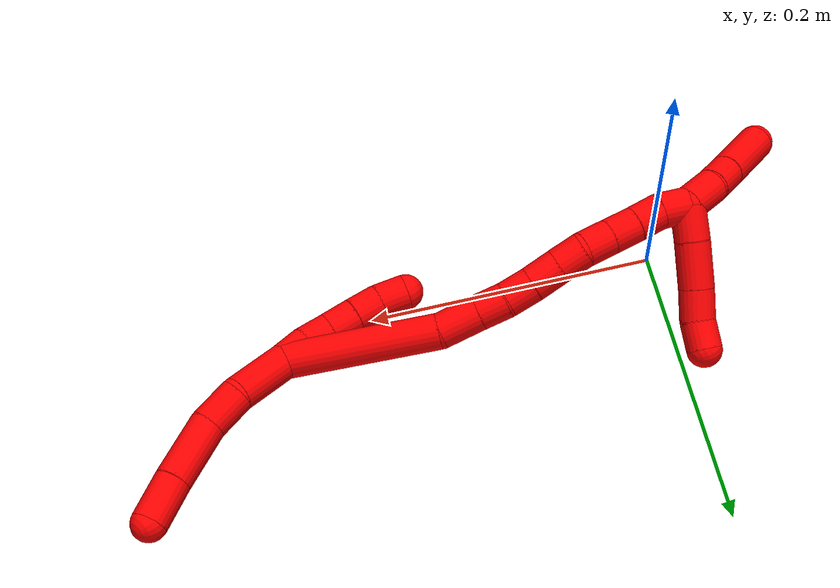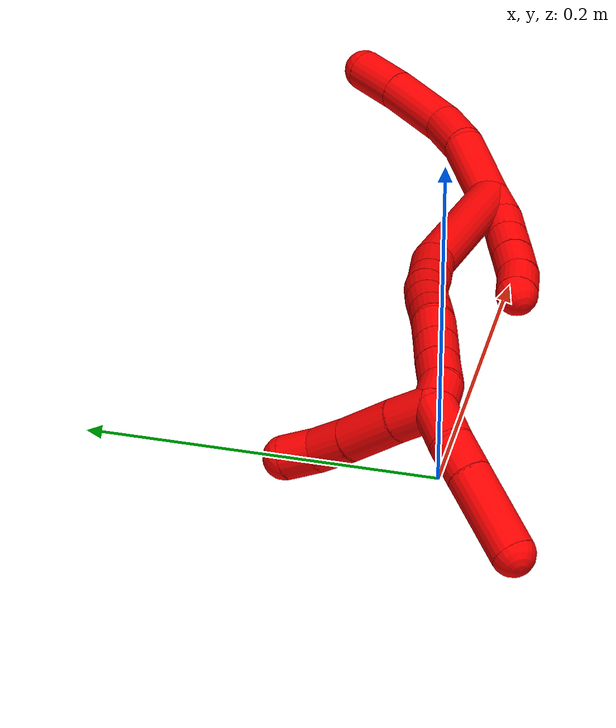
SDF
<sdf version="1.7">
 <world name="default">
  <model name="2">
   <static>0</static>
   <link name="2">
    <collision name="collision-cylinder-e_1_2_8">
     <pose>-0.001228 -0.000747 0.022044 0.03386 -0.055618 -0.000942</pose>
     <geometry><cylinder><radius>0.0125</radius><length>0.044182</length></cylinder></geometry>
     <surface>
      <friction><ode><mu>1.16</mu><mu2>1.16</mu2><slip1>0</slip1><slip2>0</slip2></ode></friction>
      <contact><ode><kp>1e+06</kp><kd>1</kd><max_vel>0</max_vel><min_depth>0.001</min_depth></ode></contact>
     </surface>
    </collision>
    <visual name="visual-cylinder-e_1_2_8">
     <pose>-0.001228 -0.000747 0.022044 0.03386 -0.055618 -0.000942</pose>
     <geometry><cylinder><radius>0.0125</radius><length>0.044182</length></cylinder></geometry>
     <material><ambient>1 0 0 1</ambient></material>
    </visual>
    <collision name="collision-cylinder-e_2_8_9">
     <pose>-0.002068 0.00223 0.057767 -0.265757 0.027395 -0.003662</pose>
     <geometry><cylinder><radius>0.0125</radius><length>0.028363</length></cylinder></geometry>
     <surface>
      <friction><ode><mu>1.16</mu><mu2>1.16</mu2><slip1>0</slip1><slip2>0</slip2></ode></friction>
      <contact><ode><kp>1e+06</kp><kd>1</kd><max_vel>0</max_vel><min_depth>0.001</min_depth></ode></contact>
     </surface>
    </collision>
    <visual name="visual-cylinder-e_2_8_9">
     <pose>-0.002068 0.00223 0.057767 -0.265757 0.027395 -0.003662</pose>
     <geometry><cylinder><radius>0.0125</radius><length>0.028363</length></cylinder></geometry>
     <material><ambient>1 0 0 1</ambient></material>
    </visual>
    <collision name="collision-cylinder-e_3_9_10">
     <pose>-0.006511 0.012728 0.092471 -0.311721 -0.215344 0.033966</pose>
     <geometry><cylinder><radius>0.0125</radius><length>0.045224</length></cylinder></geometry>
     <surface>
      <friction><ode><mu>1.16</mu><mu2>1.16</mu2><slip1>0</slip1><slip2>0</slip2></ode></friction>
      <contact><ode><kp>1e+06</kp><kd>1</kd><max_vel>0</max_vel><min_depth>0.001</min_depth></ode></contact>
     </surface>
    </collision>
    <visual name="visual-cylinder-e_3_9_10">
     <pose>-0.006511 0.012728 0.092471 -0.311721 -0.215344 0.033966</pose>
     <geometry><cylinder><radius>0.0125</radius><length>0.045224</length></cylinder></geometry>
     <material><ambient>1 0 0 1</ambient></material>
    </visual>
    <collision name="collision-cylinder-e_4_10_6">
     <pose>-0.015023 0.025157 0.128132 -0.36866 -0.230409 0.043143</pose>
     <geometry><cylinder><radius>0.0125</radius><length>0.03223</length></cylinder></geometry>
     <surface>
      <friction><ode><mu>1.16</mu><mu2>1.16</mu2><slip1>0</slip1><slip2>0</slip2></ode></friction>
      <contact><ode><kp>1e+06</kp><kd>1</kd><max_vel>0</max_vel><min_depth>0.001</min_depth></ode></contact>
     </surface>
    </collision>
    <visual name="visual-cylinder-e_4_10_6">
     <pose>-0.015023 0.025157 0.128132 -0.36866 -0.230409 0.043143</pose>
     <geometry><cylinder><radius>0.0125</radius><length>0.03223</length></cylinder></geometry>
     <material><ambient>1 0 0 1</ambient></material>
    </visual>
    <collision name="collision-cylinder-e_1_2_11">
     <pose>0.000387 -0.000465 -0.009982 3.09507 0.038681 1.38719</pose>
     <geometry><cylinder><radius>0.0125</radius><length>0.02</length></cylinder></geometry>
     <surface>
      <friction><ode><mu>1.16</mu><mu2>1.16</mu2><slip1>0</slip1><slip2>0</slip2></ode></friction>
      <contact><ode><kp>1e+06</kp><kd>1</kd><max_vel>0</max_vel><min_depth>0.001</min_depth></ode></contact>
     </surface>
    </collision>
    <visual name="visual-cylinder-e_1_2_11">
     <pose>0.000387 -0.000465 -0.009982 3.09507 0.038681 1.38719</pose>
     <geometry><cylinder><radius>0.0125</radius><length>0.02</length></cylinder></geometry>
     <material><ambient>1 0 0 1</ambient></material>
    </visual>
    <collision name="collision-cylinder-e_2_11_12">
     <pose>-0.001868 -0.00189 -0.02956 3.04183 -0.267358 -2.43071</pose>
     <geometry><cylinder><radius>0.0125</radius><length>0.02</length></cylinder></geometry>
     <surface>
      <friction><ode><mu>1.16</mu><mu2>1.16</mu2><slip1>0</slip1><slip2>0</slip2></ode></friction>
      <contact><ode><kp>1e+06</kp><kd>1</kd><max_vel>0</max_vel><min_depth>0.001</min_depth></ode></contact>
     </surface>
    </collision>
    <visual name="visual-cylinder-e_2_11_12">
     <pose>-0.001868 -0.00189 -0.02956 3.04183 -0.267358 -2.43071</pose>
     <geometry><cylinder><radius>0.0125</radius><length>0.02</length></cylinder></geometry>
     <material><ambient>1 0 0 1</ambient></material>
    </visual>
    <collision name="collision-cylinder-e_3_12_13">
     <pose>-0.007214 -0.004077 -0.048706 3.01387 -0.273816 -2.27245</pose>
     <geometry><cylinder><radius>0.0125</radius><length>0.02</length></cylinder></geometry>
     <surface>
      <friction><ode><mu>1.16</mu><mu2>1.16</mu2><slip1>0</slip1><slip2>0</slip2></ode></friction>
      <contact><ode><kp>1e+06</kp><kd>1</kd><max_vel>0</max_vel><min_depth>0.001</min_depth></ode></contact>
     </surface>
    </collision>
    <visual name="visual-cylinder-e_3_12_13">
     <pose>-0.007214 -0.004077 -0.048706 3.01387 -0.273816 -2.27245</pose>
     <geometry><cylinder><radius>0.0125</radius><length>0.02</length></cylinder></geometry>
     <material><ambient>1 0 0 1</ambient></material>
    </visual>
    <collision name="collision-cylinder-e_4_13_14">
     <pose>-0.012473 -0.006152 -0.067886 3.05363 -0.25836 -2.48832</pose>
     <geometry><cylinder><radius>0.0125</radius><length>0.02</length></cylinder></geometry>
     <surface>
      <friction><ode><mu>1.16</mu><mu2>1.16</mu2><slip1>0</slip1><slip2>0</slip2></ode></friction>
      <contact><ode><kp>1e+06</kp><kd>1</kd><max_vel>0</max_vel><min_depth>0.001</min_depth></ode></contact>
     </surface>
    </collision>
    <visual name="visual-cylinder-e_4_13_14">
     <pose>-0.012473 -0.006152 -0.067886 3.05363 -0.25836 -2.48832</pose>
     <geometry><cylinder><radius>0.0125</radius><length>0.02</length></cylinder></geometry>
     <material><ambient>1 0 0 1</ambient></material>
    </visual>
    <collision name="collision-cylinder-e_5_14_5">
     <pose>-0.019488 -0.007348 -0.086461 3.10287 -0.4622 -2.97738</pose>
     <geometry><cylinder><radius>0.0125</radius><length>0.02</length></cylinder></geometry>
     <surface>
      <friction><ode><mu>1.16</mu><mu2>1.16</mu2><slip1>0</slip1><slip2>0</slip2></ode></friction>
      <contact><ode><kp>1e+06</kp><kd>1</kd><max_vel>0</max_vel><min_depth>0.001</min_depth></ode></contact>
     </surface>
    </collision>
    <visual name="visual-cylinder-e_5_14_5">
     <pose>-0.019488 -0.007348 -0.086461 3.10287 -0.4622 -2.97738</pose>
     <geometry><cylinder><radius>0.0125</radius><length>0.02</length></cylinder></geometry>
     <material><ambient>1 0 0 1</ambient></material>
    </visual>
    <collision name="collision-cylinder-e_1_2_15">
     <pose>-0.037716 -0.002029 -0.038834 3.08938 -0.77012 -3.01292</pose>
     <geometry><cylinder><radius>0.0125</radius><length>0.108346</length></cylinder></geometry>
     <surface>
      <friction><ode><mu>1.16</mu><mu2>1.16</mu2><slip1>0</slip1><slip2>0</slip2></ode></friction>
      <contact><ode><kp>1e+06</kp><kd>1</kd><max_vel>0</max_vel><min_depth>0.001</min_depth></ode></contact>
     </surface>
    </collision>
    <visual name="visual-cylinder-e_1_2_15">
     <pose>-0.037716 -0.002029 -0.038834 3.08938 -0.77012 -3.01292</pose>
     <geometry><cylinder><radius>0.0125</radius><length>0.108346</length></cylinder></geometry>
     <material><ambient>1 0 0 1</ambient></material>
    </visual>
    <collision name="collision-cylinder-e_2_15_16">
     <pose>-0.083213 -0.007274 -0.08947 2.8756 -0.566508 -2.27994</pose>
     <geometry><cylinder><radius>0.0125</radius><length>0.028995</length></cylinder></geometry>
     <surface>
      <friction><ode><mu>1.16</mu><mu2>1.16</mu2><slip1>0</slip1><slip2>0</slip2></ode></friction>
      <contact><ode><kp>1e+06</kp><kd>1</kd><max_vel>0</max_vel><min_depth>0.001</min_depth></ode></contact>
     </surface>
    </collision>
    <visual name="visual-cylinder-e_2_15_16">
     <pose>-0.083213 -0.007274 -0.08947 2.8756 -0.566508 -2.27994</pose>
     <geometry><cylinder><radius>0.0125</radius><length>0.028995</length></cylinder></geometry>
     <material><ambient>1 0 0 1</ambient></material>
    </visual>
    <collision name="collision-cylinder-e_3_16_17">
     <pose>-0.096926 -0.012867 -0.109198 2.8502 -0.621967 -2.28504</pose>
     <geometry><cylinder><radius>0.0125</radius><length>0.020362</length></cylinder></geometry>
     <surface>
      <friction><ode><mu>1.16</mu><mu2>1.16</mu2><slip1>0</slip1><slip2>0</slip2></ode></friction>
      <contact><ode><kp>1e+06</kp><kd>1</kd><max_vel>0</max_vel><min_depth>0.001</min_depth></ode></contact>
     </surface>
    </collision>
    <visual name="visual-cylinder-e_3_16_17">
     <pose>-0.096926 -0.012867 -0.109198 2.8502 -0.621967 -2.28504</pose>
     <geometry><cylinder><radius>0.0125</radius><length>0.020362</length></cylinder></geometry>
     <material><ambient>1 0 0 1</ambient></material>
    </visual>
    <collision name="collision-cylinder-e_4_17_18">
     <pose>-0.107488 -0.018059 -0.125535 2.81867 -0.481137 -1.96937</pose>
     <geometry><cylinder><radius>0.0125</radius><length>0.020011</length></cylinder></geometry>
     <surface>
      <friction><ode><mu>1.16</mu><mu2>1.16</mu2><slip1>0</slip1><slip2>0</slip2></ode></friction>
      <contact><ode><kp>1e+06</kp><kd>1</kd><max_vel>0</max_vel><min_depth>0.001</min_depth></ode></contact>
     </surface>
    </collision>
    <visual name="visual-cylinder-e_4_17_18">
     <pose>-0.107488 -0.018059 -0.125535 2.81867 -0.481137 -1.96937</pose>
     <geometry><cylinder><radius>0.0125</radius><length>0.020011</length></cylinder></geometry>
     <material><ambient>1 0 0 1</ambient></material>
    </visual>
    <collision name="collision-cylinder-e_5_18_19">
     <pose>-0.116488 -0.024174 -0.143147 2.79715 -0.420339 -1.77345</pose>
     <geometry><cylinder><radius>0.0125</radius><length>0.021416</length></cylinder></geometry>
     <surface>
      <friction><ode><mu>1.16</mu><mu2>1.16</mu2><slip1>0</slip1><slip2>0</slip2></ode></friction>
      <contact><ode><kp>1e+06</kp><kd>1</kd><max_vel>0</max_vel><min_depth>0.001</min_depth></ode></contact>
     </surface>
    </collision>
    <visual name="visual-cylinder-e_5_18_19">
     <pose>-0.116488 -0.024174 -0.143147 2.79715 -0.420339 -1.77345</pose>
     <geometry><cylinder><radius>0.0125</radius><length>0.021416</length></cylinder></geometry>
     <material><ambient>1 0 0 1</ambient></material>
    </visual>
    <collision name="collision-cylinder-e_6_19_20">
     <pose>-0.125288 -0.030644 -0.160837 2.78429 -0.454868 -1.81644</pose>
     <geometry><cylinder><radius>0.0125</radius><length>0.020171</length></cylinder></geometry>
     <surface>
      <friction><ode><mu>1.16</mu><mu2>1.16</mu2><slip1>0</slip1><slip2>0</slip2></ode></friction>
      <contact><ode><kp>1e+06</kp><kd>1</kd><max_vel>0</max_vel><min_depth>0.001</min_depth></ode></contact>
     </surface>
    </collision>
    <visual name="visual-cylinder-e_6_19_20">
     <pose>-0.125288 -0.030644 -0.160837 2.78429 -0.454868 -1.81644</pose>
     <geometry><cylinder><radius>0.0125</radius><length>0.020171</length></cylinder></geometry>
     <material><ambient>1 0 0 1</ambient></material>
    </visual>
    <collision name="collision-cylinder-e_7_20_21">
     <pose>-0.133126 -0.03451 -0.178846 3.06853 -0.342685 -2.72529</pose>
     <geometry><cylinder><radius>0.0125</radius><length>0.020273</length></cylinder></geometry>
     <surface>
      <friction><ode><mu>1.16</mu><mu2>1.16</mu2><slip1>0</slip1><slip2>0</slip2></ode></friction>
      <contact><ode><kp>1e+06</kp><kd>1</kd><max_vel>0</max_vel><min_depth>0.001</min_depth></ode></contact>
     </surface>
    </collision>
    <visual name="visual-cylinder-e_7_20_21">
     <pose>-0.133126 -0.03451 -0.178846 3.06853 -0.342685 -2.72529</pose>
     <geometry><cylinder><radius>0.0125</radius><length>0.020273</length></cylinder></geometry>
     <material><ambient>1 0 0 1</ambient></material>
    </visual>
    <collision name="collision-cylinder-e_8_21_22">
     <pose>-0.140185 -0.036089 -0.197741 3.04778 -0.370162 -2.65028</pose>
     <geometry><cylinder><radius>0.0125</radius><length>0.020196</length></cylinder></geometry>
     <surface>
      <friction><ode><mu>1.16</mu><mu2>1.16</mu2><slip1>0</slip1><slip2>0</slip2></ode></friction>
      <contact><ode><kp>1e+06</kp><kd>1</kd><max_vel>0</max_vel><min_depth>0.001</min_depth></ode></contact>
     </surface>
    </collision>
    <visual name="visual-cylinder-e_8_21_22">
     <pose>-0.140185 -0.036089 -0.197741 3.04778 -0.370162 -2.65028</pose>
     <geometry><cylinder><radius>0.0125</radius><length>0.020196</length></cylinder></geometry>
     <material><ambient>1 0 0 1</ambient></material>
    </visual>
    <collision name="collision-cylinder-e_9_22_23">
     <pose>-0.147043 -0.037915 -0.216608 3.04243 -0.324118 -2.55223</pose>
     <geometry><cylinder><radius>0.0125</radius><length>0.02013</length></cylinder></geometry>
     <surface>
      <friction><ode><mu>1.16</mu><mu2>1.16</mu2><slip1>0</slip1><slip2>0</slip2></ode></friction>
      <contact><ode><kp>1e+06</kp><kd>1</kd><max_vel>0</max_vel><min_depth>0.001</min_depth></ode></contact>
     </surface>
    </collision>
    <visual name="visual-cylinder-e_9_22_23">
     <pose>-0.147043 -0.037915 -0.216608 3.04243 -0.324118 -2.55223</pose>
     <geometry><cylinder><radius>0.0125</radius><length>0.02013</length></cylinder></geometry>
     <material><ambient>1 0 0 1</ambient></material>
    </visual>
    <collision name="collision-cylinder-e_10_23_1">
     <pose>-0.155512 -0.038183 -0.234637 -3.06244 -0.551148 2.86335</pose>
     <geometry><cylinder><radius>0.0125</radius><length>0.0201</length></cylinder></geometry>
     <surface>
      <friction><ode><mu>1.16</mu><mu2>1.16</mu2><slip1>0</slip1><slip2>0</slip2></ode></friction>
      <contact><ode><kp>1e+06</kp><kd>1</kd><max_vel>0</max_vel><min_depth>0.001</min_depth></ode></contact>
     </surface>
    </collision>
    <visual name="visual-cylinder-e_10_23_1">
     <pose>-0.155512 -0.038183 -0.234637 -3.06244 -0.551148 2.86335</pose>
     <geometry><cylinder><radius>0.0125</radius><length>0.0201</length></cylinder></geometry>
     <material><ambient>1 0 0 1</ambient></material>
    </visual>
    <collision name="collision-cylinder-e_1_1_24">
     <pose>-0.164878 -0.026734 -0.238791 -1.18453 -0.33928 0.229485</pose>
     <geometry><cylinder><radius>0.0125</radius><length>0.024662</length></cylinder></geometry>
     <surface>
      <friction><ode><mu>1.16</mu><mu2>1.16</mu2><slip1>0</slip1><slip2>0</slip2></ode></friction>
      <contact><ode><kp>1e+06</kp><kd>1</kd><max_vel>0</max_vel><min_depth>0.001</min_depth></ode></contact>
     </surface>
    </collision>
    <visual name="visual-cylinder-e_1_1_24">
     <pose>-0.164878 -0.026734 -0.238791 -1.18453 -0.33928 0.229485</pose>
     <geometry><cylinder><radius>0.0125</radius><length>0.024662</length></cylinder></geometry>
     <material><ambient>1 0 0 1</ambient></material>
    </visual>
    <collision name="collision-cylinder-e_2_24_25">
     <pose>-0.173406 -0.00131 -0.228653 -1.19638 -0.273916 0.187295</pose>
     <geometry><cylinder><radius>0.0125</radius><length>0.032706</length></cylinder></geometry>
     <surface>
      <friction><ode><mu>1.16</mu><mu2>1.16</mu2><slip1>0</slip1><slip2>0</slip2></ode></friction>
      <contact><ode><kp>1e+06</kp><kd>1</kd><max_vel>0</max_vel><min_depth>0.001</min_depth></ode></contact>
     </surface>
    </collision>
    <visual name="visual-cylinder-e_2_24_25">
     <pose>-0.173406 -0.00131 -0.228653 -1.19638 -0.273916 0.187295</pose>
     <geometry><cylinder><radius>0.0125</radius><length>0.032706</length></cylinder></geometry>
     <material><ambient>1 0 0 1</ambient></material>
    </visual>
    <collision name="collision-cylinder-e_3_25_26">
     <pose>-0.180716 0.023103 -0.218307 -1.13136 -0.261531 0.16661</pose>
     <geometry><cylinder><radius>0.0125</radius><length>0.02233</length></cylinder></geometry>
     <surface>
      <friction><ode><mu>1.16</mu><mu2>1.16</mu2><slip1>0</slip1><slip2>0</slip2></ode></friction>
      <contact><ode><kp>1e+06</kp><kd>1</kd><max_vel>0</max_vel><min_depth>0.001</min_depth></ode></contact>
     </surface>
    </collision>
    <visual name="visual-cylinder-e_3_25_26">
     <pose>-0.180716 0.023103 -0.218307 -1.13136 -0.261531 0.16661</pose>
     <geometry><cylinder><radius>0.0125</radius><length>0.02233</length></cylinder></geometry>
     <material><ambient>1 0 0 1</ambient></material>
    </visual>
    <collision name="collision-cylinder-e_4_26_4">
     <pose>-0.188482 0.040935 -0.209964 -1.13538 -0.50136 0.323736</pose>
     <geometry><cylinder><radius>0.0125</radius><length>0.020302</length></cylinder></geometry>
     <surface>
      <friction><ode><mu>1.16</mu><mu2>1.16</mu2><slip1>0</slip1><slip2>0</slip2></ode></friction>
      <contact><ode><kp>1e+06</kp><kd>1</kd><max_vel>0</max_vel><min_depth>0.001</min_depth></ode></contact>
     </surface>
    </collision>
    <visual name="visual-cylinder-e_4_26_4">
     <pose>-0.188482 0.040935 -0.209964 -1.13538 -0.50136 0.323736</pose>
     <geometry><cylinder><radius>0.0125</radius><length>0.020302</length></cylinder></geometry>
     <material><ambient>1 0 0 1</ambient></material>
    </visual>
    <collision name="collision-cylinder-e_1_1_27">
     <pose>-0.160522 -0.037571 -0.256811 3.13683 0.018534 2.63815</pose>
     <geometry><cylinder><radius>0.0125</radius><length>0.027282</length></cylinder></geometry>
     <surface>
      <friction><ode><mu>1.16</mu><mu2>1.16</mu2><slip1>0</slip1><slip2>0</slip2></ode></friction>
      <contact><ode><kp>1e+06</kp><kd>1</kd><max_vel>0</max_vel><min_depth>0.001</min_depth></ode></contact>
     </surface>
    </collision>
    <visual name="visual-cylinder-e_1_1_27">
     <pose>-0.160522 -0.037571 -0.256811 3.13683 0.018534 2.63815</pose>
     <geometry><cylinder><radius>0.0125</radius><length>0.027282</length></cylinder></geometry>
     <material><ambient>1 0 0 1</ambient></material>
    </visual>
    <collision name="collision-cylinder-e_2_27_28">
     <pose>-0.158131 -0.036879 -0.281007 -3.07003 0.199339 -2.45406</pose>
     <geometry><cylinder><radius>0.0125</radius><length>0.021596</length></cylinder></geometry>
     <surface>
      <friction><ode><mu>1.16</mu><mu2>1.16</mu2><slip1>0</slip1><slip2>0</slip2></ode></friction>
      <contact><ode><kp>1e+06</kp><kd>1</kd><max_vel>0</max_vel><min_depth>0.001</min_depth></ode></contact>
     </surface>
    </collision>
    <visual name="visual-cylinder-e_2_27_28">
     <pose>-0.158131 -0.036879 -0.281007 -3.07003 0.199339 -2.45406</pose>
     <geometry><cylinder><radius>0.0125</radius><length>0.021596</length></cylinder></geometry>
     <material><ambient>1 0 0 1</ambient></material>
    </visual>
    <collision name="collision-cylinder-e_3_28_3">
     <pose>-0.149937 -0.033619 -0.316271 -3.04063 0.239155 -2.34548</pose>
     <geometry><cylinder><radius>0.0125</radius><length>0.051122</length></cylinder></geometry>
     <surface>
      <friction><ode><mu>1.16</mu><mu2>1.16</mu2><slip1>0</slip1><slip2>0</slip2></ode></friction>
      <contact><ode><kp>1e+06</kp><kd>1</kd><max_vel>0</max_vel><min_depth>0.001</min_depth></ode></contact>
     </surface>
    </collision>
    <visual name="visual-cylinder-e_3_28_3">
     <pose>-0.149937 -0.033619 -0.316271 -3.04063 0.239155 -2.34548</pose>
     <geometry><cylinder><radius>0.0125</radius><length>0.051122</length></cylinder></geometry>
     <material><ambient>1 0 0 1</ambient></material>
    </visual>
    <collision name="collision-sphere-3">
     <pose>-0.143883 -0.031116 -0.340977 0 -0 0</pose>
     <geometry><sphere><radius>0.0125</radius></sphere></geometry>
     <surface>
      <friction><ode><mu>1.16</mu><mu2>1.16</mu2><slip1>0</slip1><slip2>0</slip2></ode></friction>
      <contact><ode><kp>1e+06</kp><kd>1</kd><max_vel>0</max_vel><min_depth>0.001</min_depth></ode></contact>
     </surface>
    </collision>
    <visual name="visual-sphere-3">
     <pose>-0.143883 -0.031116 -0.340977 0 -0 0</pose>
     <geometry><sphere><radius>0.0125</radius></sphere></geometry>
     <material><ambient>1 0 0 1</ambient></material>
    </visual>
    <collision name="collision-sphere-28">
     <pose>-0.155992 -0.036122 -0.291564 0 -0 0</pose>
     <geometry><sphere><radius>0.0125</radius></sphere></geometry>
     <surface>
      <friction><ode><mu>1.16</mu><mu2>1.16</mu2><slip1>0</slip1><slip2>0</slip2></ode></friction>
      <contact><ode><kp>1e+06</kp><kd>1</kd><max_vel>0</max_vel><min_depth>0.001</min_depth></ode></contact>
     </surface>
    </collision>
    <visual name="visual-sphere-28">
     <pose>-0.155992 -0.036122 -0.291564 0 -0 0</pose>
     <geometry><sphere><radius>0.0125</radius></sphere></geometry>
     <material><ambient>1 0 0 1</ambient></material>
    </visual>
    <collision name="collision-sphere-27">
     <pose>-0.160269 -0.037636 -0.270449 0 -0 0</pose>
     <geometry><sphere><radius>0.0125</radius></sphere></geometry>
     <surface>
      <friction><ode><mu>1.16</mu><mu2>1.16</mu2><slip1>0</slip1><slip2>0</slip2></ode></friction>
      <contact><ode><kp>1e+06</kp><kd>1</kd><max_vel>0</max_vel><min_depth>0.001</min_depth></ode></contact>
     </surface>
    </collision>
    <visual name="visual-sphere-27">
     <pose>-0.160269 -0.037636 -0.270449 0 -0 0</pose>
     <geometry><sphere><radius>0.0125</radius></sphere></geometry>
     <material><ambient>1 0 0 1</ambient></material>
    </visual>
    <collision name="collision-sphere-4">
     <pose>-0.19336 0.049006 -0.206209 0 -0 0</pose>
     <geometry><sphere><radius>0.0125</radius></sphere></geometry>
     <surface>
      <friction><ode><mu>1.16</mu><mu2>1.16</mu2><slip1>0</slip1><slip2>0</slip2></ode></friction>
      <contact><ode><kp>1e+06</kp><kd>1</kd><max_vel>0</max_vel><min_depth>0.001</min_depth></ode></contact>
     </surface>
    </collision>
    <visual name="visual-sphere-4">
     <pose>-0.19336 0.049006 -0.206209 0 -0 0</pose>
     <geometry><sphere><radius>0.0125</radius></sphere></geometry>
     <material><ambient>1 0 0 1</ambient></material>
    </visual>
    <collision name="collision-sphere-26">
     <pose>-0.183603 0.032864 -0.213718 0 -0 0</pose>
     <geometry><sphere><radius>0.0125</radius></sphere></geometry>
     <surface>
      <friction><ode><mu>1.16</mu><mu2>1.16</mu2><slip1>0</slip1><slip2>0</slip2></ode></friction>
      <contact><ode><kp>1e+06</kp><kd>1</kd><max_vel>0</max_vel><min_depth>0.001</min_depth></ode></contact>
     </surface>
    </collision>
    <visual name="visual-sphere-26">
     <pose>-0.183603 0.032864 -0.213718 0 -0 0</pose>
     <geometry><sphere><radius>0.0125</radius></sphere></geometry>
     <material><ambient>1 0 0 1</ambient></material>
    </visual>
    <collision name="collision-sphere-25">
     <pose>-0.177829 0.013343 -0.222895 0 -0 0</pose>
     <geometry><sphere><radius>0.0125</radius></sphere></geometry>
     <surface>
      <friction><ode><mu>1.16</mu><mu2>1.16</mu2><slip1>0</slip1><slip2>0</slip2></ode></friction>
      <contact><ode><kp>1e+06</kp><kd>1</kd><max_vel>0</max_vel><min_depth>0.001</min_depth></ode></contact>
     </surface>
    </collision>
    <visual name="visual-sphere-25">
     <pose>-0.177829 0.013343 -0.222895 0 -0 0</pose>
     <geometry><sphere><radius>0.0125</radius></sphere></geometry>
     <material><ambient>1 0 0 1</ambient></material>
    </visual>
    <collision name="collision-sphere-24">
     <pose>-0.168982 -0.015963 -0.234411 0 -0 0</pose>
     <geometry><sphere><radius>0.0125</radius></sphere></geometry>
     <surface>
      <friction><ode><mu>1.16</mu><mu2>1.16</mu2><slip1>0</slip1><slip2>0</slip2></ode></friction>
      <contact><ode><kp>1e+06</kp><kd>1</kd><max_vel>0</max_vel><min_depth>0.001</min_depth></ode></contact>
     </surface>
    </collision>
    <visual name="visual-sphere-24">
     <pose>-0.168982 -0.015963 -0.234411 0 -0 0</pose>
     <geometry><sphere><radius>0.0125</radius></sphere></geometry>
     <material><ambient>1 0 0 1</ambient></material>
    </visual>
    <collision name="collision-sphere-1">
     <pose>-0.160775 -0.037506 -0.243172 0 -0 0</pose>
     <geometry><sphere><radius>0.0125</radius></sphere></geometry>
     <surface>
      <friction><ode><mu>1.16</mu><mu2>1.16</mu2><slip1>0</slip1><slip2>0</slip2></ode></friction>
      <contact><ode><kp>1e+06</kp><kd>1</kd><max_vel>0</max_vel><min_depth>0.001</min_depth></ode></contact>
     </surface>
    </collision>
    <visual name="visual-sphere-1">
     <pose>-0.160775 -0.037506 -0.243172 0 -0 0</pose>
     <geometry><sphere><radius>0.0125</radius></sphere></geometry>
     <material><ambient>1 0 0 1</ambient></material>
    </visual>
    <collision name="collision-sphere-23">
     <pose>-0.150249 -0.03886 -0.226102 0 -0 0</pose>
     <geometry><sphere><radius>0.0125</radius></sphere></geometry>
     <surface>
      <friction><ode><mu>1.16</mu><mu2>1.16</mu2><slip1>0</slip1><slip2>0</slip2></ode></friction>
      <contact><ode><kp>1e+06</kp><kd>1</kd><max_vel>0</max_vel><min_depth>0.001</min_depth></ode></contact>
     </surface>
    </collision>
    <visual name="visual-sphere-23">
     <pose>-0.150249 -0.03886 -0.226102 0 -0 0</pose>
     <geometry><sphere><radius>0.0125</radius></sphere></geometry>
     <material><ambient>1 0 0 1</ambient></material>
    </visual>
    <collision name="collision-sphere-22">
     <pose>-0.143838 -0.03697 -0.207114 0 -0 0</pose>
     <geometry><sphere><radius>0.0125</radius></sphere></geometry>
     <surface>
      <friction><ode><mu>1.16</mu><mu2>1.16</mu2><slip1>0</slip1><slip2>0</slip2></ode></friction>
      <contact><ode><kp>1e+06</kp><kd>1</kd><max_vel>0</max_vel><min_depth>0.001</min_depth></ode></contact>
     </surface>
    </collision>
    <visual name="visual-sphere-22">
     <pose>-0.143838 -0.03697 -0.207114 0 -0 0</pose>
     <geometry><sphere><radius>0.0125</radius></sphere></geometry>
     <material><ambient>1 0 0 1</ambient></material>
    </visual>
    <collision name="collision-sphere-21">
     <pose>-0.136532 -0.035207 -0.188368 0 -0 0</pose>
     <geometry><sphere><radius>0.0125</radius></sphere></geometry>
     <surface>
      <friction><ode><mu>1.16</mu><mu2>1.16</mu2><slip1>0</slip1><slip2>0</slip2></ode></friction>
      <contact><ode><kp>1e+06</kp><kd>1</kd><max_vel>0</max_vel><min_depth>0.001</min_depth></ode></contact>
     </surface>
    </collision>
    <visual name="visual-sphere-21">
     <pose>-0.136532 -0.035207 -0.188368 0 -0 0</pose>
     <geometry><sphere><radius>0.0125</radius></sphere></geometry>
     <material><ambient>1 0 0 1</ambient></material>
    </visual>
    <collision name="collision-sphere-11">
     <pose>0.000773 -0.000929 -0.019963 0 -0 0</pose>
     <geometry><sphere><radius>0.0125</radius></sphere></geometry>
     <surface>
      <friction><ode><mu>1.16</mu><mu2>1.16</mu2><slip1>0</slip1><slip2>0</slip2></ode></friction>
      <contact><ode><kp>1e+06</kp><kd>1</kd><max_vel>0</max_vel><min_depth>0.001</min_depth></ode></contact>
     </surface>
    </collision>
    <visual name="visual-sphere-11">
     <pose>0.000773 -0.000929 -0.019963 0 -0 0</pose>
     <geometry><sphere><radius>0.0125</radius></sphere></geometry>
     <material><ambient>1 0 0 1</ambient></material>
    </visual>
    <collision name="collision-sphere-6">
     <pose>-0.018703 0.030811 0.142767 0 -0 0</pose>
     <geometry><sphere><radius>0.0125</radius></sphere></geometry>
     <surface>
      <friction><ode><mu>1.16</mu><mu2>1.16</mu2><slip1>0</slip1><slip2>0</slip2></ode></friction>
      <contact><ode><kp>1e+06</kp><kd>1</kd><max_vel>0</max_vel><min_depth>0.001</min_depth></ode></contact>
     </surface>
    </collision>
    <visual name="visual-sphere-6">
     <pose>-0.018703 0.030811 0.142767 0 -0 0</pose>
     <geometry><sphere><radius>0.0125</radius></sphere></geometry>
     <material><ambient>1 0 0 1</ambient></material>
    </visual>
    <collision name="collision-sphere-10">
     <pose>-0.011343 0.019503 0.113497 0 -0 0</pose>
     <geometry><sphere><radius>0.0125</radius></sphere></geometry>
     <surface>
      <friction><ode><mu>1.16</mu><mu2>1.16</mu2><slip1>0</slip1><slip2>0</slip2></ode></friction>
      <contact><ode><kp>1e+06</kp><kd>1</kd><max_vel>0</max_vel><min_depth>0.001</min_depth></ode></contact>
     </surface>
    </collision>
    <visual name="visual-sphere-10">
     <pose>-0.011343 0.019503 0.113497 0 -0 0</pose>
     <geometry><sphere><radius>0.0125</radius></sphere></geometry>
     <material><ambient>1 0 0 1</ambient></material>
    </visual>
    <collision name="collision-sphere-9">
     <pose>-0.001679 0.005953 0.071446 0 -0 0</pose>
     <geometry><sphere><radius>0.0125</radius></sphere></geometry>
     <surface>
      <friction><ode><mu>1.16</mu><mu2>1.16</mu2><slip1>0</slip1><slip2>0</slip2></ode></friction>
      <contact><ode><kp>1e+06</kp><kd>1</kd><max_vel>0</max_vel><min_depth>0.001</min_depth></ode></contact>
     </surface>
    </collision>
    <visual name="visual-sphere-9">
     <pose>-0.001679 0.005953 0.071446 0 -0 0</pose>
     <geometry><sphere><radius>0.0125</radius></sphere></geometry>
     <material><ambient>1 0 0 1</ambient></material>
    </visual>
    <collision name="collision-sphere-2">
     <geometry><sphere><radius>0.0125</radius></sphere></geometry>
     <surface>
      <friction><ode><mu>1.16</mu><mu2>1.16</mu2><slip1>0</slip1><slip2>0</slip2></ode></friction>
      <contact><ode><kp>1e+06</kp><kd>1</kd><max_vel>0</max_vel><min_depth>0.001</min_depth></ode></contact>
     </surface>
    </collision>
    <visual name="visual-sphere-2">
     <geometry><sphere><radius>0.0125</radius></sphere></geometry>
     <material><ambient>1 0 0 1</ambient></material>
    </visual>
    <collision name="collision-sphere-19">
     <pose>-0.120857 -0.027475 -0.152349 0 -0 0</pose>
     <geometry><sphere><radius>0.0125</radius></sphere></geometry>
     <surface>
      <friction><ode><mu>1.16</mu><mu2>1.16</mu2><slip1>0</slip1><slip2>0</slip2></ode></friction>
      <contact><ode><kp>1e+06</kp><kd>1</kd><max_vel>0</max_vel><min_depth>0.001</min_depth></ode></contact>
     </surface>
    </collision>
    <visual name="visual-sphere-19">
     <pose>-0.120857 -0.027475 -0.152349 0 -0 0</pose>
     <geometry><sphere><radius>0.0125</radius></sphere></geometry>
     <material><ambient>1 0 0 1</ambient></material>
    </visual>
    <collision name="collision-sphere-8">
     <pose>-0.002456 -0.001493 0.044089 0 -0 0</pose>
     <geometry><sphere><radius>0.0125</radius></sphere></geometry>
     <surface>
      <friction><ode><mu>1.16</mu><mu2>1.16</mu2><slip1>0</slip1><slip2>0</slip2></ode></friction>
      <contact><ode><kp>1e+06</kp><kd>1</kd><max_vel>0</max_vel><min_depth>0.001</min_depth></ode></contact>
     </surface>
    </collision>
    <visual name="visual-sphere-8">
     <pose>-0.002456 -0.001493 0.044089 0 -0 0</pose>
     <geometry><sphere><radius>0.0125</radius></sphere></geometry>
     <material><ambient>1 0 0 1</ambient></material>
    </visual>
    <collision name="collision-sphere-12">
     <pose>-0.00451 -0.002851 -0.039157 0 -0 0</pose>
     <geometry><sphere><radius>0.0125</radius></sphere></geometry>
     <surface>
      <friction><ode><mu>1.16</mu><mu2>1.16</mu2><slip1>0</slip1><slip2>0</slip2></ode></friction>
      <contact><ode><kp>1e+06</kp><kd>1</kd><max_vel>0</max_vel><min_depth>0.001</min_depth></ode></contact>
     </surface>
    </collision>
    <visual name="visual-sphere-12">
     <pose>-0.00451 -0.002851 -0.039157 0 -0 0</pose>
     <geometry><sphere><radius>0.0125</radius></sphere></geometry>
     <material><ambient>1 0 0 1</ambient></material>
    </visual>
    <collision name="collision-sphere-13">
     <pose>-0.009918 -0.005303 -0.058255 0 -0 0</pose>
     <geometry><sphere><radius>0.0125</radius></sphere></geometry>
     <surface>
      <friction><ode><mu>1.16</mu><mu2>1.16</mu2><slip1>0</slip1><slip2>0</slip2></ode></friction>
      <contact><ode><kp>1e+06</kp><kd>1</kd><max_vel>0</max_vel><min_depth>0.001</min_depth></ode></contact>
     </surface>
    </collision>
    <visual name="visual-sphere-13">
     <pose>-0.009918 -0.005303 -0.058255 0 -0 0</pose>
     <geometry><sphere><radius>0.0125</radius></sphere></geometry>
     <material><ambient>1 0 0 1</ambient></material>
    </visual>
    <collision name="collision-sphere-14">
     <pose>-0.015028 -0.007002 -0.077516 0 -0 0</pose>
     <geometry><sphere><radius>0.0125</radius></sphere></geometry>
     <surface>
      <friction><ode><mu>1.16</mu><mu2>1.16</mu2><slip1>0</slip1><slip2>0</slip2></ode></friction>
      <contact><ode><kp>1e+06</kp><kd>1</kd><max_vel>0</max_vel><min_depth>0.001</min_depth></ode></contact>
     </surface>
    </collision>
    <visual name="visual-sphere-14">
     <pose>-0.015028 -0.007002 -0.077516 0 -0 0</pose>
     <geometry><sphere><radius>0.0125</radius></sphere></geometry>
     <material><ambient>1 0 0 1</ambient></material>
    </visual>
    <collision name="collision-sphere-5">
     <pose>-0.023947 -0.007695 -0.095405 0 -0 0</pose>
     <geometry><sphere><radius>0.0125</radius></sphere></geometry>
     <surface>
      <friction><ode><mu>1.16</mu><mu2>1.16</mu2><slip1>0</slip1><slip2>0</slip2></ode></friction>
      <contact><ode><kp>1e+06</kp><kd>1</kd><max_vel>0</max_vel><min_depth>0.001</min_depth></ode></contact>
     </surface>
    </collision>
    <visual name="visual-sphere-5">
     <pose>-0.023947 -0.007695 -0.095405 0 -0 0</pose>
     <geometry><sphere><radius>0.0125</radius></sphere></geometry>
     <material><ambient>1 0 0 1</ambient></material>
    </visual>
    <collision name="collision-sphere-15">
     <pose>-0.075433 -0.004059 -0.077668 0 -0 0</pose>
     <geometry><sphere><radius>0.0125</radius></sphere></geometry>
     <surface>
      <friction><ode><mu>1.16</mu><mu2>1.16</mu2><slip1>0</slip1><slip2>0</slip2></ode></friction>
      <contact><ode><kp>1e+06</kp><kd>1</kd><max_vel>0</max_vel><min_depth>0.001</min_depth></ode></contact>
     </surface>
    </collision>
    <visual name="visual-sphere-15">
     <pose>-0.075433 -0.004059 -0.077668 0 -0 0</pose>
     <geometry><sphere><radius>0.0125</radius></sphere></geometry>
     <material><ambient>1 0 0 1</ambient></material>
    </visual>
    <collision name="collision-sphere-16">
     <pose>-0.090994 -0.01049 -0.101273 0 -0 0</pose>
     <geometry><sphere><radius>0.0125</radius></sphere></geometry>
     <surface>
      <friction><ode><mu>1.16</mu><mu2>1.16</mu2><slip1>0</slip1><slip2>0</slip2></ode></friction>
      <contact><ode><kp>1e+06</kp><kd>1</kd><max_vel>0</max_vel><min_depth>0.001</min_depth></ode></contact>
     </surface>
    </collision>
    <visual name="visual-sphere-16">
     <pose>-0.090994 -0.01049 -0.101273 0 -0 0</pose>
     <geometry><sphere><radius>0.0125</radius></sphere></geometry>
     <material><ambient>1 0 0 1</ambient></material>
    </visual>
    <collision name="collision-sphere-17">
     <pose>-0.102857 -0.015244 -0.117124 0 -0 0</pose>
     <geometry><sphere><radius>0.0125</radius></sphere></geometry>
     <surface>
      <friction><ode><mu>1.16</mu><mu2>1.16</mu2><slip1>0</slip1><slip2>0</slip2></ode></friction>
      <contact><ode><kp>1e+06</kp><kd>1</kd><max_vel>0</max_vel><min_depth>0.001</min_depth></ode></contact>
     </surface>
    </collision>
    <visual name="visual-sphere-17">
     <pose>-0.102857 -0.015244 -0.117124 0 -0 0</pose>
     <geometry><sphere><radius>0.0125</radius></sphere></geometry>
     <material><ambient>1 0 0 1</ambient></material>
    </visual>
    <collision name="collision-sphere-18">
     <pose>-0.112118 -0.020873 -0.133946 0 -0 0</pose>
     <geometry><sphere><radius>0.0125</radius></sphere></geometry>
     <surface>
      <friction><ode><mu>1.16</mu><mu2>1.16</mu2><slip1>0</slip1><slip2>0</slip2></ode></friction>
      <contact><ode><kp>1e+06</kp><kd>1</kd><max_vel>0</max_vel><min_depth>0.001</min_depth></ode></contact>
     </surface>
    </collision>
    <visual name="visual-sphere-18">
     <pose>-0.112118 -0.020873 -0.133946 0 -0 0</pose>
     <geometry><sphere><radius>0.0125</radius></sphere></geometry>
     <material><ambient>1 0 0 1</ambient></material>
    </visual>
    <collision name="collision-sphere-20">
     <pose>-0.129719 -0.033813 -0.169325 0 -0 0</pose>
     <geometry><sphere><radius>0.0125</radius></sphere></geometry>
     <surface>
      <friction><ode><mu>1.16</mu><mu2>1.16</mu2><slip1>0</slip1><slip2>0</slip2></ode></friction>
      <contact><ode><kp>1e+06</kp><kd>1</kd><max_vel>0</max_vel><min_depth>0.001</min_depth></ode></contact>
     </surface>
    </collision>
    <visual name="visual-sphere-20">
     <pose>-0.129719 -0.033813 -0.169325 0 -0 0</pose>
     <geometry><sphere><radius>0.0125</radius></sphere></geometry>
     <material><ambient>1 0 0 1</ambient></material>
    </visual>
    <inertial>
     <pose>-0.0827 -0.009369 -0.106959 0 -0 0</pose>
     <mass>0.75</mass>
     <inertia>
      <ixx>-0.000113</ixx>
      <ixy>0</ixy>
      <ixz>0</ixz>
      <iyy>0.000146</iyy>
      <iyz>0</iyz>
      <izz>6.1e-05</izz>
     </inertia>
    </inertial>
   </link>
   <pose>0.265391 0.025193 0.017826 -1.30958 0.450268 -0.909744</pose>
  </model>
 </world>
</sdf>
